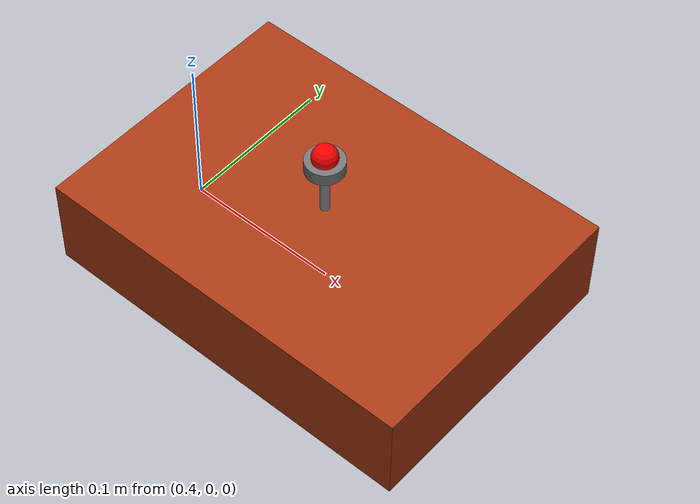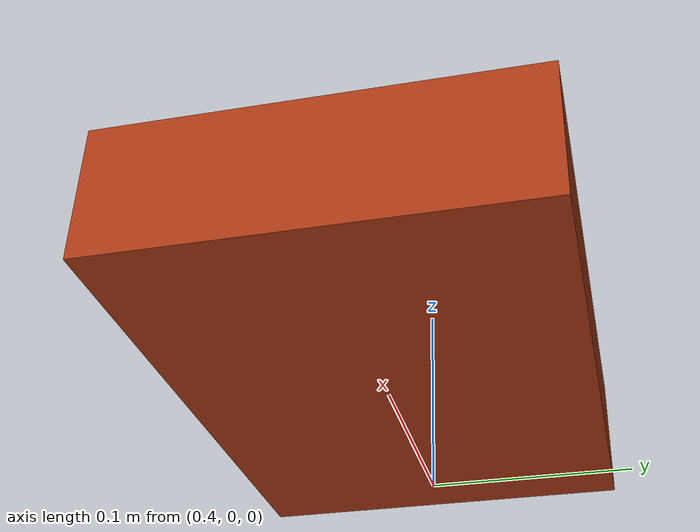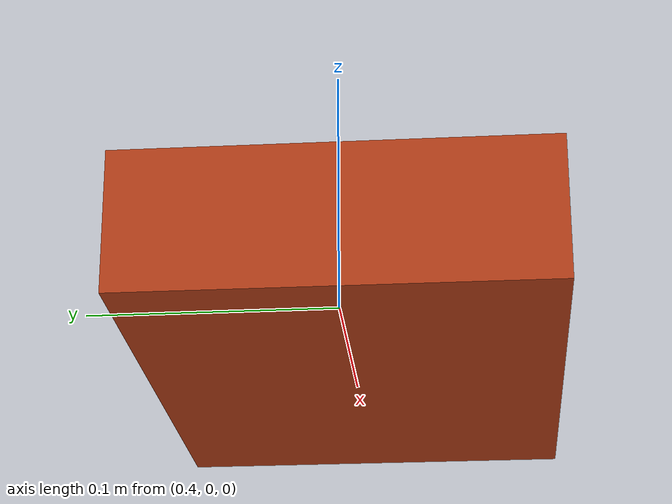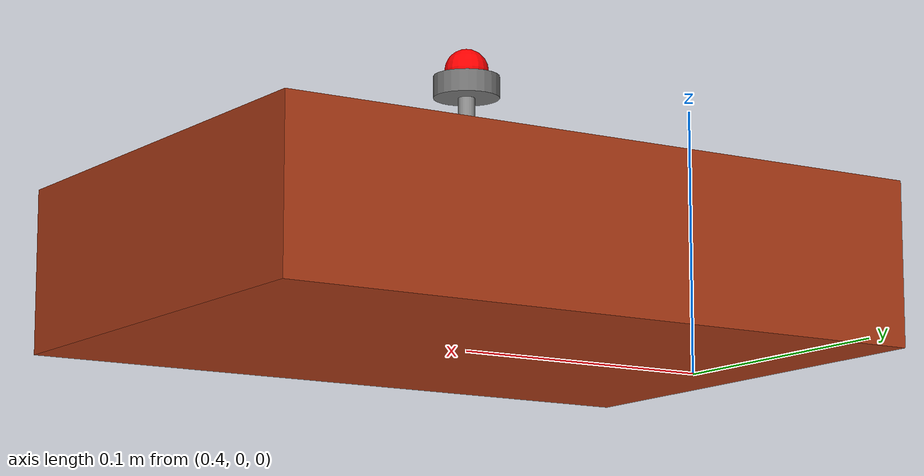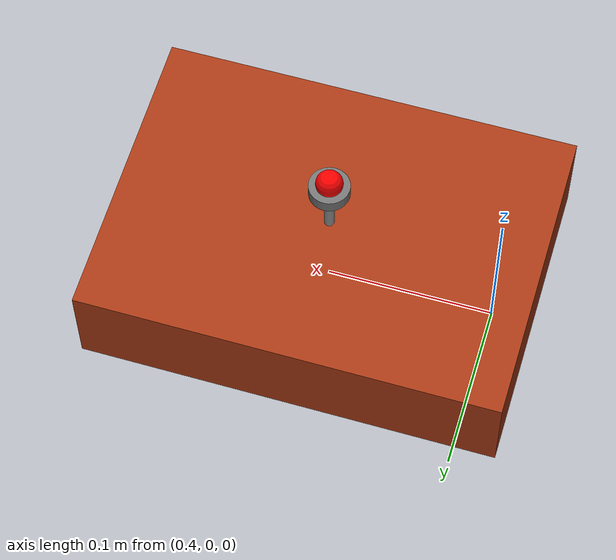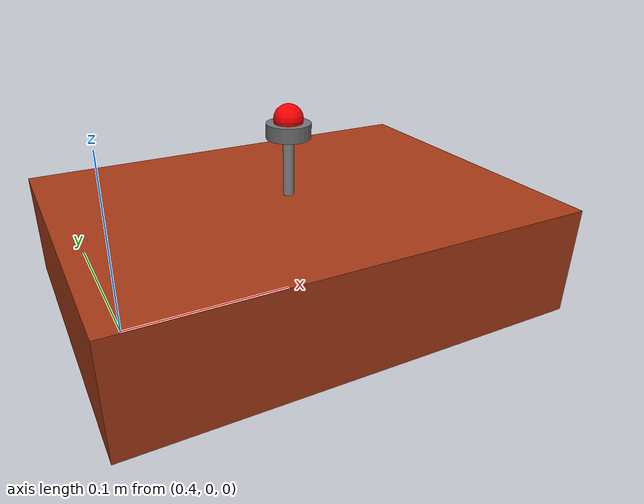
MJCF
<mujoco model="nail_block_scene">
  <compiler angle="radian" autolimits="true"/>

  <worldbody>
    <!-- Wooden block fixed to the world -->
    <body name="block" pos="0.50 0 0.03">
      <geom name="block_geom"
            type="box"
            size="0.125 0.09 0.03"
            rgba="0.65 0.22 0.08 1"
            friction="1.5 0.01 0.001"
            contype="0" conaffinity="0"/>
    </body>

    <body name="nail" pos="0.50 0 0.09" gravcomp="1">
      <joint name="nail_slide"
             type="slide"
             axis="0 0 -1"
             range="0 0.032"
             damping="0.5"
             frictionloss="30.0"/>
      <geom name="nail_shaft" type="cylinder" pos="0 0 -0.035" size="0.003 0.04"
            mass="0.005" rgba="0.55 0.55 0.55 1"
            contype="0" conaffinity="0"/>
      <geom name="nail_head"  type="cylinder" pos="0 0 0.006"  size="0.012 0.004"
            mass="0.002" rgba="0.45 0.45 0.45 1"
            contype="2" conaffinity="2"
            solref="0.008 1" solimp="0.9 0.95 0.001 0.5 2"/>
      <site name="nail_top" pos="0 0 0.012" size="0.008" rgba="1 0 0 1"/>
    </body>
  </worldbody>
</mujoco>
